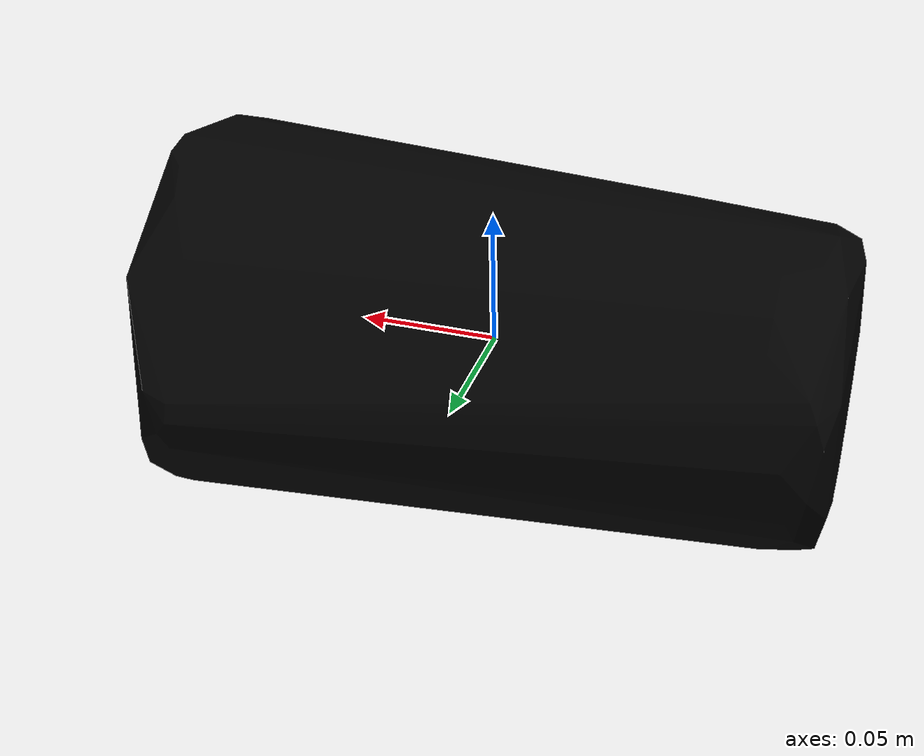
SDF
<?xml version="1.0"?>
<sdf version="1.4">
  <model name="019_pitcher_base_textured">
    <pose>0 0 0  0 0 0</pose>
    <link name="body">
      <inertial>
        <mass> 1.0 </mass>
        <pose>0 0 0 0 0 0</pose>
        <inertia>
          <ixx>0.0018448808255063878</ixx>
          <ixy>0.0</ixy>
          <ixz>0.0</ixz>
          <iyy>0.0052052632120771795</iyy>
          <iyz>0.0</iyz>
          <izz>0.005267646086116431</izz>
        </inertia>
      </inertial>
      <visual name="visual">
        <geometry>
          <mesh>
            <uri>model://019_pitcher_base_textured/textured.dae</uri>
          </mesh>
        </geometry>
        <pose>-0.1229493605280781 0.010880982882540784 0.03324712730121103 -1.564690979509079 -0.7371946085704506 -1.5611254518574964</pose>
      </visual>
      <collision name="collision">
        <geometry>
          <mesh>
            <uri>model://019_pitcher_base_textured/textured.col.dae</uri>
          </mesh>
        </geometry>
        <max_contacts>10</max_contacts>
        <surface>
          <friction>
            <ode>
              <mu>0.8</mu>
              <mu2>0.8</mu2>
              <slip1>0</slip1>
              <slip2>0</slip2>
            </ode>
            <torsional>
              <ode/>
            </torsional>
          </friction>
          <contact>
            <ode>
              <kp>1000000.0</kp>
              <kd>1.0</kd>
              <max_vel>0.0</max_vel>
            </ode>
          </contact>
        </surface>
        <pose>-0.1229493605280781 0.010880982882540784 0.03324712730121103 -1.564690979509079 -0.7371946085704506 -1.5611254518574964</pose>
      </collision>
    </link>
  </model>
</sdf>
